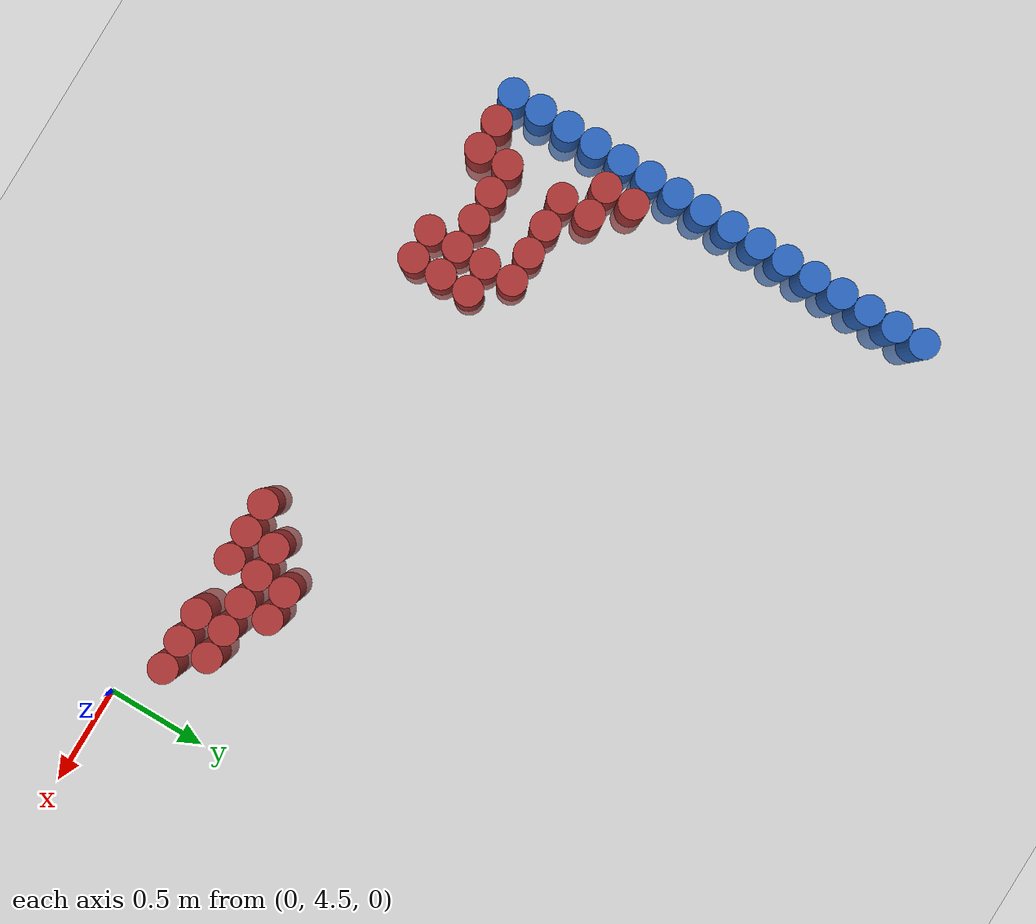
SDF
<sdf version="1.6">
 <world name="default">
  <model name="ground_plane">
   <static>1</static>
   <link name="link">
    <collision name="collision">
     <geometry><plane><normal>0 0 1</normal><size>100 100</size></plane></geometry>
     <surface><friction><ode><mu>100</mu><mu2>50</mu2></ode></friction></surface>
    </collision>
    <visual name="visual">
     <cast_shadows>0</cast_shadows>
     <geometry><plane><normal>0 0 1</normal><size>100 100</size></plane></geometry>
     <material>
      <script><uri>file://media/materials/scripts/gazebo.material</uri><name>Gazebo/Grey</name></script>
     </material>
    </visual>
   </link>
  </model>
  <model name="unit_cylinder_177">
   <static>1</static>
   <pose>-3.425000 4.675000 0.000000 0.000000 0.000000 0.000000</pose>
   <link name="link">
    <inertial>
     <mass>1</mass>
     <inertia><ixx>0.145833</ixx><ixy>0</ixy><ixz>0</ixz><iyy>0.145833</iyy><iyz>0</iyz><izz>0.125</izz></inertia>
    </inertial>
    <collision name="collision">
     <geometry><cylinder><radius>0.075000</radius><length>1.5</length></cylinder></geometry>
    </collision>
    <visual name="visual">
     <geometry><cylinder><radius>0.075000</radius><length>1.5</length></cylinder></geometry>
     <material>
      <ambient>0.152000 0.379000 0.720000 1</ambient>
      <diffuse>0.152000 0.379000 0.720000 1</diffuse>
     </material>
     <material>
      <script><name>Gazebo/Grey</name><uri>file://media/materials/scripts/gazebo.material</uri></script>
     </material>
    </visual>
   </link>
  </model>
  <model name="unit_cylinder_179">
   <static>1</static>
   <pose>-3.425000 4.825000 0.000000 0.000000 0.000000 0.000000</pose>
   <link name="link">
    <inertial>
     <mass>1</mass>
     <inertia><ixx>0.145833</ixx><ixy>0</ixy><ixz>0</ixz><iyy>0.145833</iyy><iyz>0</iyz><izz>0.125</izz></inertia>
    </inertial>
    <collision name="collision">
     <geometry><cylinder><radius>0.075000</radius><length>1.5</length></cylinder></geometry>
    </collision>
    <visual name="visual">
     <geometry><cylinder><radius>0.075000</radius><length>1.5</length></cylinder></geometry>
     <material>
      <ambient>0.152000 0.379000 0.720000 1</ambient>
      <diffuse>0.152000 0.379000 0.720000 1</diffuse>
     </material>
     <material>
      <script><name>Gazebo/Grey</name><uri>file://media/materials/scripts/gazebo.material</uri></script>
     </material>
    </visual>
   </link>
  </model>
  <model name="unit_cylinder_181">
   <static>1</static>
   <pose>-3.425000 4.975000 0.000000 0.000000 0.000000 0.000000</pose>
   <link name="link">
    <inertial>
     <mass>1</mass>
     <inertia><ixx>0.145833</ixx><ixy>0</ixy><ixz>0</ixz><iyy>0.145833</iyy><iyz>0</iyz><izz>0.125</izz></inertia>
    </inertial>
    <collision name="collision">
     <geometry><cylinder><radius>0.075000</radius><length>1.5</length></cylinder></geometry>
    </collision>
    <visual name="visual">
     <geometry><cylinder><radius>0.075000</radius><length>1.5</length></cylinder></geometry>
     <material>
      <ambient>0.152000 0.379000 0.720000 1</ambient>
      <diffuse>0.152000 0.379000 0.720000 1</diffuse>
     </material>
     <material>
      <script><name>Gazebo/Grey</name><uri>file://media/materials/scripts/gazebo.material</uri></script>
     </material>
    </visual>
   </link>
  </model>
  <model name="unit_cylinder_183">
   <static>1</static>
   <pose>-3.425000 5.125000 0.000000 0.000000 0.000000 0.000000</pose>
   <link name="link">
    <inertial>
     <mass>1</mass>
     <inertia><ixx>0.145833</ixx><ixy>0</ixy><ixz>0</ixz><iyy>0.145833</iyy><iyz>0</iyz><izz>0.125</izz></inertia>
    </inertial>
    <collision name="collision">
     <geometry><cylinder><radius>0.075000</radius><length>1.5</length></cylinder></geometry>
    </collision>
    <visual name="visual">
     <geometry><cylinder><radius>0.075000</radius><length>1.5</length></cylinder></geometry>
     <material>
      <ambient>0.152000 0.379000 0.720000 1</ambient>
      <diffuse>0.152000 0.379000 0.720000 1</diffuse>
     </material>
     <material>
      <script><name>Gazebo/Grey</name><uri>file://media/materials/scripts/gazebo.material</uri></script>
     </material>
    </visual>
   </link>
  </model>
  <model name="unit_cylinder_185">
   <static>1</static>
   <pose>-3.425000 5.275000 0.000000 0.000000 0.000000 0.000000</pose>
   <link name="link">
    <inertial>
     <mass>1</mass>
     <inertia><ixx>0.145833</ixx><ixy>0</ixy><ixz>0</ixz><iyy>0.145833</iyy><iyz>0</iyz><izz>0.125</izz></inertia>
    </inertial>
    <collision name="collision">
     <geometry><cylinder><radius>0.075000</radius><length>1.5</length></cylinder></geometry>
    </collision>
    <visual name="visual">
     <geometry><cylinder><radius>0.075000</radius><length>1.5</length></cylinder></geometry>
     <material>
      <ambient>0.152000 0.379000 0.720000 1</ambient>
      <diffuse>0.152000 0.379000 0.720000 1</diffuse>
     </material>
     <material>
      <script><name>Gazebo/Grey</name><uri>file://media/materials/scripts/gazebo.material</uri></script>
     </material>
    </visual>
   </link>
  </model>
  <model name="unit_cylinder_187">
   <static>1</static>
   <pose>-3.425000 5.425000 0.000000 0.000000 0.000000 0.000000</pose>
   <link name="link">
    <inertial>
     <mass>1</mass>
     <inertia><ixx>0.145833</ixx><ixy>0</ixy><ixz>0</ixz><iyy>0.145833</iyy><iyz>0</iyz><izz>0.125</izz></inertia>
    </inertial>
    <collision name="collision">
     <geometry><cylinder><radius>0.075000</radius><length>1.5</length></cylinder></geometry>
    </collision>
    <visual name="visual">
     <geometry><cylinder><radius>0.075000</radius><length>1.5</length></cylinder></geometry>
     <material>
      <ambient>0.152000 0.379000 0.720000 1</ambient>
      <diffuse>0.152000 0.379000 0.720000 1</diffuse>
     </material>
     <material>
      <script><name>Gazebo/Grey</name><uri>file://media/materials/scripts/gazebo.material</uri></script>
     </material>
    </visual>
   </link>
  </model>
  <model name="unit_cylinder_189">
   <static>1</static>
   <pose>-3.425000 5.575000 0.000000 0.000000 0.000000 0.000000</pose>
   <link name="link">
    <inertial>
     <mass>1</mass>
     <inertia><ixx>0.145833</ixx><ixy>0</ixy><ixz>0</ixz><iyy>0.145833</iyy><iyz>0</iyz><izz>0.125</izz></inertia>
    </inertial>
    <collision name="collision">
     <geometry><cylinder><radius>0.075000</radius><length>1.5</length></cylinder></geometry>
    </collision>
    <visual name="visual">
     <geometry><cylinder><radius>0.075000</radius><length>1.5</length></cylinder></geometry>
     <material>
      <ambient>0.152000 0.379000 0.720000 1</ambient>
      <diffuse>0.152000 0.379000 0.720000 1</diffuse>
     </material>
     <material>
      <script><name>Gazebo/Grey</name><uri>file://media/materials/scripts/gazebo.material</uri></script>
     </material>
    </visual>
   </link>
  </model>
  <model name="unit_cylinder_191">
   <static>1</static>
   <pose>-3.425000 5.725000 0.000000 0.000000 0.000000 0.000000</pose>
   <link name="link">
    <inertial>
     <mass>1</mass>
     <inertia><ixx>0.145833</ixx><ixy>0</ixy><ixz>0</ixz><iyy>0.145833</iyy><iyz>0</iyz><izz>0.125</izz></inertia>
    </inertial>
    <collision name="collision">
     <geometry><cylinder><radius>0.075000</radius><length>1.5</length></cylinder></geometry>
    </collision>
    <visual name="visual">
     <geometry><cylinder><radius>0.075000</radius><length>1.5</length></cylinder></geometry>
     <material>
      <ambient>0.152000 0.379000 0.720000 1</ambient>
      <diffuse>0.152000 0.379000 0.720000 1</diffuse>
     </material>
     <material>
      <script><name>Gazebo/Grey</name><uri>file://media/materials/scripts/gazebo.material</uri></script>
     </material>
    </visual>
   </link>
  </model>
  <model name="unit_cylinder_193">
   <static>1</static>
   <pose>-3.425000 5.875000 0.000000 0.000000 0.000000 0.000000</pose>
   <link name="link">
    <inertial>
     <mass>1</mass>
     <inertia><ixx>0.145833</ixx><ixy>0</ixy><ixz>0</ixz><iyy>0.145833</iyy><iyz>0</iyz><izz>0.125</izz></inertia>
    </inertial>
    <collision name="collision">
     <geometry><cylinder><radius>0.075000</radius><length>1.5</length></cylinder></geometry>
    </collision>
    <visual name="visual">
     <geometry><cylinder><radius>0.075000</radius><length>1.5</length></cylinder></geometry>
     <material>
      <ambient>0.152000 0.379000 0.720000 1</ambient>
      <diffuse>0.152000 0.379000 0.720000 1</diffuse>
     </material>
     <material>
      <script><name>Gazebo/Grey</name><uri>file://media/materials/scripts/gazebo.material</uri></script>
     </material>
    </visual>
   </link>
  </model>
  <model name="unit_cylinder_195">
   <static>1</static>
   <pose>-3.425000 6.025000 0.000000 0.000000 0.000000 0.000000</pose>
   <link name="link">
    <inertial>
     <mass>1</mass>
     <inertia><ixx>0.145833</ixx><ixy>0</ixy><ixz>0</ixz><iyy>0.145833</iyy><iyz>0</iyz><izz>0.125</izz></inertia>
    </inertial>
    <collision name="collision">
     <geometry><cylinder><radius>0.075000</radius><length>1.5</length></cylinder></geometry>
    </collision>
    <visual name="visual">
     <geometry><cylinder><radius>0.075000</radius><length>1.5</length></cylinder></geometry>
     <material>
      <ambient>0.152000 0.379000 0.720000 1</ambient>
      <diffuse>0.152000 0.379000 0.720000 1</diffuse>
     </material>
     <material>
      <script><name>Gazebo/Grey</name><uri>file://media/materials/scripts/gazebo.material</uri></script>
     </material>
    </visual>
   </link>
  </model>
  <model name="unit_cylinder_197">
   <static>1</static>
   <pose>-3.425000 6.175000 0.000000 0.000000 0.000000 0.000000</pose>
   <link name="link">
    <inertial>
     <mass>1</mass>
     <inertia><ixx>0.145833</ixx><ixy>0</ixy><ixz>0</ixz><iyy>0.145833</iyy><iyz>0</iyz><izz>0.125</izz></inertia>
    </inertial>
    <collision name="collision">
     <geometry><cylinder><radius>0.075000</radius><length>1.5</length></cylinder></geometry>
    </collision>
    <visual name="visual">
     <geometry><cylinder><radius>0.075000</radius><length>1.5</length></cylinder></geometry>
     <material>
      <ambient>0.152000 0.379000 0.720000 1</ambient>
      <diffuse>0.152000 0.379000 0.720000 1</diffuse>
     </material>
     <material>
      <script><name>Gazebo/Grey</name><uri>file://media/materials/scripts/gazebo.material</uri></script>
     </material>
    </visual>
   </link>
  </model>
  <model name="unit_cylinder_199">
   <static>1</static>
   <pose>-3.425000 6.325000 0.000000 0.000000 0.000000 0.000000</pose>
   <link name="link">
    <inertial>
     <mass>1</mass>
     <inertia><ixx>0.145833</ixx><ixy>0</ixy><ixz>0</ixz><iyy>0.145833</iyy><iyz>0</iyz><izz>0.125</izz></inertia>
    </inertial>
    <collision name="collision">
     <geometry><cylinder><radius>0.075000</radius><length>1.5</length></cylinder></geometry>
    </collision>
    <visual name="visual">
     <geometry><cylinder><radius>0.075000</radius><length>1.5</length></cylinder></geometry>
     <material>
      <ambient>0.152000 0.379000 0.720000 1</ambient>
      <diffuse>0.152000 0.379000 0.720000 1</diffuse>
     </material>
     <material>
      <script><name>Gazebo/Grey</name><uri>file://media/materials/scripts/gazebo.material</uri></script>
     </material>
    </visual>
   </link>
  </model>
  <model name="unit_cylinder_201">
   <static>1</static>
   <pose>-3.425000 6.475000 0.000000 0.000000 0.000000 0.000000</pose>
   <link name="link">
    <inertial>
     <mass>1</mass>
     <inertia><ixx>0.145833</ixx><ixy>0</ixy><ixz>0</ixz><iyy>0.145833</iyy><iyz>0</iyz><izz>0.125</izz></inertia>
    </inertial>
    <collision name="collision">
     <geometry><cylinder><radius>0.075000</radius><length>1.5</length></cylinder></geometry>
    </collision>
    <visual name="visual">
     <geometry><cylinder><radius>0.075000</radius><length>1.5</length></cylinder></geometry>
     <material>
      <ambient>0.152000 0.379000 0.720000 1</ambient>
      <diffuse>0.152000 0.379000 0.720000 1</diffuse>
     </material>
     <material>
      <script><name>Gazebo/Grey</name><uri>file://media/materials/scripts/gazebo.material</uri></script>
     </material>
    </visual>
   </link>
  </model>
  <model name="unit_cylinder_203">
   <static>1</static>
   <pose>-3.425000 6.625000 0.000000 0.000000 0.000000 0.000000</pose>
   <link name="link">
    <inertial>
     <mass>1</mass>
     <inertia><ixx>0.145833</ixx><ixy>0</ixy><ixz>0</ixz><iyy>0.145833</iyy><iyz>0</iyz><izz>0.125</izz></inertia>
    </inertial>
    <collision name="collision">
     <geometry><cylinder><radius>0.075000</radius><length>1.5</length></cylinder></geometry>
    </collision>
    <visual name="visual">
     <geometry><cylinder><radius>0.075000</radius><length>1.5</length></cylinder></geometry>
     <material>
      <ambient>0.152000 0.379000 0.720000 1</ambient>
      <diffuse>0.152000 0.379000 0.720000 1</diffuse>
     </material>
     <material>
      <script><name>Gazebo/Grey</name><uri>file://media/materials/scripts/gazebo.material</uri></script>
     </material>
    </visual>
   </link>
  </model>
  <model name="unit_cylinder_205">
   <static>1</static>
   <pose>-3.425000 6.775000 0.000000 0.000000 0.000000 0.000000</pose>
   <link name="link">
    <inertial>
     <mass>1</mass>
     <inertia><ixx>0.145833</ixx><ixy>0</ixy><ixz>0</ixz><iyy>0.145833</iyy><iyz>0</iyz><izz>0.125</izz></inertia>
    </inertial>
    <collision name="collision">
     <geometry><cylinder><radius>0.075000</radius><length>1.5</length></cylinder></geometry>
    </collision>
    <visual name="visual">
     <geometry><cylinder><radius>0.075000</radius><length>1.5</length></cylinder></geometry>
     <material>
      <ambient>0.152000 0.379000 0.720000 1</ambient>
      <diffuse>0.152000 0.379000 0.720000 1</diffuse>
     </material>
     <material>
      <script><name>Gazebo/Grey</name><uri>file://media/materials/scripts/gazebo.material</uri></script>
     </material>
    </visual>
   </link>
  </model>
  <model name="unit_cylinder_207">
   <static>1</static>
   <pose>-3.425000 6.925000 0.000000 0.000000 0.000000 0.000000</pose>
   <link name="link">
    <inertial>
     <mass>1</mass>
     <inertia><ixx>0.145833</ixx><ixy>0</ixy><ixz>0</ixz><iyy>0.145833</iyy><iyz>0</iyz><izz>0.125</izz></inertia>
    </inertial>
    <collision name="collision">
     <geometry><cylinder><radius>0.075000</radius><length>1.5</length></cylinder></geometry>
    </collision>
    <visual name="visual">
     <geometry><cylinder><radius>0.075000</radius><length>1.5</length></cylinder></geometry>
     <material>
      <ambient>0.152000 0.379000 0.720000 1</ambient>
      <diffuse>0.152000 0.379000 0.720000 1</diffuse>
     </material>
     <material>
      <script><name>Gazebo/Grey</name><uri>file://media/materials/scripts/gazebo.material</uri></script>
     </material>
    </visual>
   </link>
  </model>
  <model name="unit_cylinder_252">
   <static>1</static>
   <pose>-3.425000 4.675000 0.000000 0.000000 0.000000 0.000000</pose>
   <link name="link">
    <inertial>
     <mass>1</mass>
     <inertia><ixx>0.145833</ixx><ixy>0</ixy><ixz>0</ixz><iyy>0.145833</iyy><iyz>0</iyz><izz>0.125</izz></inertia>
    </inertial>
    <collision name="collision">
     <geometry><cylinder><radius>0.075000</radius><length>1.5</length></cylinder></geometry>
    </collision>
    <visual name="visual">
     <geometry><cylinder><radius>0.075000</radius><length>1.5</length></cylinder></geometry>
     <material>
      <ambient>0.152000 0.379000 0.720000 1</ambient>
      <diffuse>0.152000 0.379000 0.720000 1</diffuse>
     </material>
     <material>
      <script><name>Gazebo/Grey</name><uri>file://media/materials/scripts/gazebo.material</uri></script>
     </material>
    </visual>
   </link>
  </model>
  <model name="unit_cylinder_253">
   <static>1</static>
   <pose>-3.425000 4.825000 0.000000 0.000000 0.000000 0.000000</pose>
   <link name="link">
    <inertial>
     <mass>1</mass>
     <inertia><ixx>0.145833</ixx><ixy>0</ixy><ixz>0</ixz><iyy>0.145833</iyy><iyz>0</iyz><izz>0.125</izz></inertia>
    </inertial>
    <collision name="collision">
     <geometry><cylinder><radius>0.075000</radius><length>1.5</length></cylinder></geometry>
    </collision>
    <visual name="visual">
     <geometry><cylinder><radius>0.075000</radius><length>1.5</length></cylinder></geometry>
     <material>
      <ambient>0.152000 0.379000 0.720000 1</ambient>
      <diffuse>0.152000 0.379000 0.720000 1</diffuse>
     </material>
     <material>
      <script><name>Gazebo/Grey</name><uri>file://media/materials/scripts/gazebo.material</uri></script>
     </material>
    </visual>
   </link>
  </model>
  <model name="unit_cylinder_254">
   <static>1</static>
   <pose>-3.425000 4.975000 0.000000 0.000000 0.000000 0.000000</pose>
   <link name="link">
    <inertial>
     <mass>1</mass>
     <inertia><ixx>0.145833</ixx><ixy>0</ixy><ixz>0</ixz><iyy>0.145833</iyy><iyz>0</iyz><izz>0.125</izz></inertia>
    </inertial>
    <collision name="collision">
     <geometry><cylinder><radius>0.075000</radius><length>1.5</length></cylinder></geometry>
    </collision>
    <visual name="visual">
     <geometry><cylinder><radius>0.075000</radius><length>1.5</length></cylinder></geometry>
     <material>
      <ambient>0.152000 0.379000 0.720000 1</ambient>
      <diffuse>0.152000 0.379000 0.720000 1</diffuse>
     </material>
     <material>
      <script><name>Gazebo/Grey</name><uri>file://media/materials/scripts/gazebo.material</uri></script>
     </material>
    </visual>
   </link>
  </model>
  <model name="unit_cylinder_255">
   <static>1</static>
   <pose>-3.425000 5.125000 0.000000 0.000000 0.000000 0.000000</pose>
   <link name="link">
    <inertial>
     <mass>1</mass>
     <inertia><ixx>0.145833</ixx><ixy>0</ixy><ixz>0</ixz><iyy>0.145833</iyy><iyz>0</iyz><izz>0.125</izz></inertia>
    </inertial>
    <collision name="collision">
     <geometry><cylinder><radius>0.075000</radius><length>1.5</length></cylinder></geometry>
    </collision>
    <visual name="visual">
     <geometry><cylinder><radius>0.075000</radius><length>1.5</length></cylinder></geometry>
     <material>
      <ambient>0.152000 0.379000 0.720000 1</ambient>
      <diffuse>0.152000 0.379000 0.720000 1</diffuse>
     </material>
     <material>
      <script><name>Gazebo/Grey</name><uri>file://media/materials/scripts/gazebo.material</uri></script>
     </material>
    </visual>
   </link>
  </model>
  <model name="unit_cylinder_256">
   <static>1</static>
   <pose>-3.425000 5.275000 0.000000 0.000000 0.000000 0.000000</pose>
   <link name="link">
    <inertial>
     <mass>1</mass>
     <inertia><ixx>0.145833</ixx><ixy>0</ixy><ixz>0</ixz><iyy>0.145833</iyy><iyz>0</iyz><izz>0.125</izz></inertia>
    </inertial>
    <collision name="collision">
     <geometry><cylinder><radius>0.075000</radius><length>1.5</length></cylinder></geometry>
    </collision>
    <visual name="visual">
     <geometry><cylinder><radius>0.075000</radius><length>1.5</length></cylinder></geometry>
     <material>
      <ambient>0.152000 0.379000 0.720000 1</ambient>
      <diffuse>0.152000 0.379000 0.720000 1</diffuse>
     </material>
     <material>
      <script><name>Gazebo/Grey</name><uri>file://media/materials/scripts/gazebo.material</uri></script>
     </material>
    </visual>
   </link>
  </model>
  <model name="unit_cylinder_257">
   <static>1</static>
   <pose>-3.425000 5.425000 0.000000 0.000000 0.000000 0.000000</pose>
   <link name="link">
    <inertial>
     <mass>1</mass>
     <inertia><ixx>0.145833</ixx><ixy>0</ixy><ixz>0</ixz><iyy>0.145833</iyy><iyz>0</iyz><izz>0.125</izz></inertia>
    </inertial>
    <collision name="collision">
     <geometry><cylinder><radius>0.075000</radius><length>1.5</length></cylinder></geometry>
    </collision>
    <visual name="visual">
     <geometry><cylinder><radius>0.075000</radius><length>1.5</length></cylinder></geometry>
     <material>
      <ambient>0.152000 0.379000 0.720000 1</ambient>
      <diffuse>0.152000 0.379000 0.720000 1</diffuse>
     </material>
     <material>
      <script><name>Gazebo/Grey</name><uri>file://media/materials/scripts/gazebo.material</uri></script>
     </material>
    </visual>
   </link>
  </model>
  <model name="unit_cylinder_269">
   <static>1</static>
   <pose>-3.275000 4.675000 0.000000 0.000000 0.000000 0.000000</pose>
   <link name="link">
    <inertial>
     <mass>1</mass>
     <inertia><ixx>0.145833</ixx><ixy>0</ixy><ixz>0</ixz><iyy>0.145833</iyy><iyz>0</iyz><izz>0.125</izz></inertia>
    </inertial>
    <collision name="collision">
     <geometry><cylinder><radius>0.075000</radius><length>1.5</length></cylinder></geometry>
    </collision>
    <visual name="visual">
     <geometry><cylinder><radius>0.075000</radius><length>1.5</length></cylinder></geometry>
     <material>
      <ambient>0.648000 0.192000 0.192000 1</ambient>
      <diffuse>0.648000 0.192000 0.192000 1</diffuse>
     </material>
     <material>
      <script><name>Gazebo/Grey</name><uri>file://media/materials/scripts/gazebo.material</uri></script>
     </material>
    </visual>
   </link>
  </model>
  <model name="unit_cylinder_270">
   <static>1</static>
   <pose>-3.275000 5.275000 0.000000 0.000000 0.000000 0.000000</pose>
   <link name="link">
    <inertial>
     <mass>1</mass>
     <inertia><ixx>0.145833</ixx><ixy>0</ixy><ixz>0</ixz><iyy>0.145833</iyy><iyz>0</iyz><izz>0.125</izz></inertia>
    </inertial>
    <collision name="collision">
     <geometry><cylinder><radius>0.075000</radius><length>1.5</length></cylinder></geometry>
    </collision>
    <visual name="visual">
     <geometry><cylinder><radius>0.075000</radius><length>1.5</length></cylinder></geometry>
     <material>
      <ambient>0.648000 0.192000 0.192000 1</ambient>
      <diffuse>0.648000 0.192000 0.192000 1</diffuse>
     </material>
     <material>
      <script><name>Gazebo/Grey</name><uri>file://media/materials/scripts/gazebo.material</uri></script>
     </material>
    </visual>
   </link>
  </model>
  <model name="unit_cylinder_271">
   <static>1</static>
   <pose>-3.275000 5.425000 0.000000 0.000000 0.000000 0.000000</pose>
   <link name="link">
    <inertial>
     <mass>1</mass>
     <inertia><ixx>0.145833</ixx><ixy>0</ixy><ixz>0</ixz><iyy>0.145833</iyy><iyz>0</iyz><izz>0.125</izz></inertia>
    </inertial>
    <collision name="collision">
     <geometry><cylinder><radius>0.075000</radius><length>1.5</length></cylinder></geometry>
    </collision>
    <visual name="visual">
     <geometry><cylinder><radius>0.075000</radius><length>1.5</length></cylinder></geometry>
     <material>
      <ambient>0.648000 0.192000 0.192000 1</ambient>
      <diffuse>0.648000 0.192000 0.192000 1</diffuse>
     </material>
     <material>
      <script><name>Gazebo/Grey</name><uri>file://media/materials/scripts/gazebo.material</uri></script>
     </material>
    </visual>
   </link>
  </model>
  <model name="unit_cylinder_278">
   <static>1</static>
   <pose>-3.125000 4.675000 0.000000 0.000000 0.000000 0.000000</pose>
   <link name="link">
    <inertial>
     <mass>1</mass>
     <inertia><ixx>0.145833</ixx><ixy>0</ixy><ixz>0</ixz><iyy>0.145833</iyy><iyz>0</iyz><izz>0.125</izz></inertia>
    </inertial>
    <collision name="collision">
     <geometry><cylinder><radius>0.075000</radius><length>1.5</length></cylinder></geometry>
    </collision>
    <visual name="visual">
     <geometry><cylinder><radius>0.075000</radius><length>1.5</length></cylinder></geometry>
     <material>
      <ambient>0.648000 0.192000 0.192000 1</ambient>
      <diffuse>0.648000 0.192000 0.192000 1</diffuse>
     </material>
     <material>
      <script><name>Gazebo/Grey</name><uri>file://media/materials/scripts/gazebo.material</uri></script>
     </material>
    </visual>
   </link>
  </model>
  <model name="unit_cylinder_279">
   <static>1</static>
   <pose>-3.125000 4.825000 0.000000 0.000000 0.000000 0.000000</pose>
   <link name="link">
    <inertial>
     <mass>1</mass>
     <inertia><ixx>0.145833</ixx><ixy>0</ixy><ixz>0</ixz><iyy>0.145833</iyy><iyz>0</iyz><izz>0.125</izz></inertia>
    </inertial>
    <collision name="collision">
     <geometry><cylinder><radius>0.075000</radius><length>1.5</length></cylinder></geometry>
    </collision>
    <visual name="visual">
     <geometry><cylinder><radius>0.075000</radius><length>1.5</length></cylinder></geometry>
     <material>
      <ambient>0.648000 0.192000 0.192000 1</ambient>
      <diffuse>0.648000 0.192000 0.192000 1</diffuse>
     </material>
     <material>
      <script><name>Gazebo/Grey</name><uri>file://media/materials/scripts/gazebo.material</uri></script>
     </material>
    </visual>
   </link>
  </model>
  <model name="unit_cylinder_280">
   <static>1</static>
   <pose>-3.125000 5.125000 0.000000 0.000000 0.000000 0.000000</pose>
   <link name="link">
    <inertial>
     <mass>1</mass>
     <inertia><ixx>0.145833</ixx><ixy>0</ixy><ixz>0</ixz><iyy>0.145833</iyy><iyz>0</iyz><izz>0.125</izz></inertia>
    </inertial>
    <collision name="collision">
     <geometry><cylinder><radius>0.075000</radius><length>1.5</length></cylinder></geometry>
    </collision>
    <visual name="visual">
     <geometry><cylinder><radius>0.075000</radius><length>1.5</length></cylinder></geometry>
     <material>
      <ambient>0.648000 0.192000 0.192000 1</ambient>
      <diffuse>0.648000 0.192000 0.192000 1</diffuse>
     </material>
     <material>
      <script><name>Gazebo/Grey</name><uri>file://media/materials/scripts/gazebo.material</uri></script>
     </material>
    </visual>
   </link>
  </model>
  <model name="unit_cylinder_281">
   <static>1</static>
   <pose>-3.125000 5.275000 0.000000 0.000000 0.000000 0.000000</pose>
   <link name="link">
    <inertial>
     <mass>1</mass>
     <inertia><ixx>0.145833</ixx><ixy>0</ixy><ixz>0</ixz><iyy>0.145833</iyy><iyz>0</iyz><izz>0.125</izz></inertia>
    </inertial>
    <collision name="collision">
     <geometry><cylinder><radius>0.075000</radius><length>1.5</length></cylinder></geometry>
    </collision>
    <visual name="visual">
     <geometry><cylinder><radius>0.075000</radius><length>1.5</length></cylinder></geometry>
     <material>
      <ambient>0.648000 0.192000 0.192000 1</ambient>
      <diffuse>0.648000 0.192000 0.192000 1</diffuse>
     </material>
     <material>
      <script><name>Gazebo/Grey</name><uri>file://media/materials/scripts/gazebo.material</uri></script>
     </material>
    </visual>
   </link>
  </model>
  <model name="unit_cylinder_288">
   <static>1</static>
   <pose>-2.975000 4.825000 0.000000 0.000000 0.000000 0.000000</pose>
   <link name="link">
    <inertial>
     <mass>1</mass>
     <inertia><ixx>0.145833</ixx><ixy>0</ixy><ixz>0</ixz><iyy>0.145833</iyy><iyz>0</iyz><izz>0.125</izz></inertia>
    </inertial>
    <collision name="collision">
     <geometry><cylinder><radius>0.075000</radius><length>1.5</length></cylinder></geometry>
    </collision>
    <visual name="visual">
     <geometry><cylinder><radius>0.075000</radius><length>1.5</length></cylinder></geometry>
     <material>
      <ambient>0.648000 0.192000 0.192000 1</ambient>
      <diffuse>0.648000 0.192000 0.192000 1</diffuse>
     </material>
     <material>
      <script><name>Gazebo/Grey</name><uri>file://media/materials/scripts/gazebo.material</uri></script>
     </material>
    </visual>
   </link>
  </model>
  <model name="unit_cylinder_289">
   <static>1</static>
   <pose>-2.975000 5.125000 0.000000 0.000000 0.000000 0.000000</pose>
   <link name="link">
    <inertial>
     <mass>1</mass>
     <inertia><ixx>0.145833</ixx><ixy>0</ixy><ixz>0</ixz><iyy>0.145833</iyy><iyz>0</iyz><izz>0.125</izz></inertia>
    </inertial>
    <collision name="collision">
     <geometry><cylinder><radius>0.075000</radius><length>1.5</length></cylinder></geometry>
    </collision>
    <visual name="visual">
     <geometry><cylinder><radius>0.075000</radius><length>1.5</length></cylinder></geometry>
     <material>
      <ambient>0.648000 0.192000 0.192000 1</ambient>
      <diffuse>0.648000 0.192000 0.192000 1</diffuse>
     </material>
     <material>
      <script><name>Gazebo/Grey</name><uri>file://media/materials/scripts/gazebo.material</uri></script>
     </material>
    </visual>
   </link>
  </model>
  <model name="unit_cylinder_293">
   <static>1</static>
   <pose>-2.825000 4.825000 0.000000 0.000000 0.000000 0.000000</pose>
   <link name="link">
    <inertial>
     <mass>1</mass>
     <inertia><ixx>0.145833</ixx><ixy>0</ixy><ixz>0</ixz><iyy>0.145833</iyy><iyz>0</iyz><izz>0.125</izz></inertia>
    </inertial>
    <collision name="collision">
     <geometry><cylinder><radius>0.075000</radius><length>1.5</length></cylinder></geometry>
    </collision>
    <visual name="visual">
     <geometry><cylinder><radius>0.075000</radius><length>1.5</length></cylinder></geometry>
     <material>
      <ambient>0.648000 0.192000 0.192000 1</ambient>
      <diffuse>0.648000 0.192000 0.192000 1</diffuse>
     </material>
     <material>
      <script><name>Gazebo/Grey</name><uri>file://media/materials/scripts/gazebo.material</uri></script>
     </material>
    </visual>
   </link>
  </model>
  <model name="unit_cylinder_294">
   <static>1</static>
   <pose>-2.825000 5.125000 0.000000 0.000000 0.000000 0.000000</pose>
   <link name="link">
    <inertial>
     <mass>1</mass>
     <inertia><ixx>0.145833</ixx><ixy>0</ixy><ixz>0</ixz><iyy>0.145833</iyy><iyz>0</iyz><izz>0.125</izz></inertia>
    </inertial>
    <collision name="collision">
     <geometry><cylinder><radius>0.075000</radius><length>1.5</length></cylinder></geometry>
    </collision>
    <visual name="visual">
     <geometry><cylinder><radius>0.075000</radius><length>1.5</length></cylinder></geometry>
     <material>
      <ambient>0.648000 0.192000 0.192000 1</ambient>
      <diffuse>0.648000 0.192000 0.192000 1</diffuse>
     </material>
     <material>
      <script><name>Gazebo/Grey</name><uri>file://media/materials/scripts/gazebo.material</uri></script>
     </material>
    </visual>
   </link>
  </model>
  <model name="unit_cylinder_301">
   <static>1</static>
   <pose>-2.675000 4.675000 0.000000 0.000000 0.000000 0.000000</pose>
   <link name="link">
    <inertial>
     <mass>1</mass>
     <inertia><ixx>0.145833</ixx><ixy>0</ixy><ixz>0</ixz><iyy>0.145833</iyy><iyz>0</iyz><izz>0.125</izz></inertia>
    </inertial>
    <collision name="collision">
     <geometry><cylinder><radius>0.075000</radius><length>1.5</length></cylinder></geometry>
    </collision>
    <visual name="visual">
     <geometry><cylinder><radius>0.075000</radius><length>1.5</length></cylinder></geometry>
     <material>
      <ambient>0.648000 0.192000 0.192000 1</ambient>
      <diffuse>0.648000 0.192000 0.192000 1</diffuse>
     </material>
     <material>
      <script><name>Gazebo/Grey</name><uri>file://media/materials/scripts/gazebo.material</uri></script>
     </material>
    </visual>
   </link>
  </model>
  <model name="unit_cylinder_302">
   <static>1</static>
   <pose>-2.675000 4.825000 0.000000 0.000000 0.000000 0.000000</pose>
   <link name="link">
    <inertial>
     <mass>1</mass>
     <inertia><ixx>0.145833</ixx><ixy>0</ixy><ixz>0</ixz><iyy>0.145833</iyy><iyz>0</iyz><izz>0.125</izz></inertia>
    </inertial>
    <collision name="collision">
     <geometry><cylinder><radius>0.075000</radius><length>1.5</length></cylinder></geometry>
    </collision>
    <visual name="visual">
     <geometry><cylinder><radius>0.075000</radius><length>1.5</length></cylinder></geometry>
     <material>
      <ambient>0.648000 0.192000 0.192000 1</ambient>
      <diffuse>0.648000 0.192000 0.192000 1</diffuse>
     </material>
     <material>
      <script><name>Gazebo/Grey</name><uri>file://media/materials/scripts/gazebo.material</uri></script>
     </material>
    </visual>
   </link>
  </model>
  <model name="unit_cylinder_303">
   <static>1</static>
   <pose>-2.675000 4.975000 0.000000 0.000000 0.000000 0.000000</pose>
   <link name="link">
    <inertial>
     <mass>1</mass>
     <inertia><ixx>0.145833</ixx><ixy>0</ixy><ixz>0</ixz><iyy>0.145833</iyy><iyz>0</iyz><izz>0.125</izz></inertia>
    </inertial>
    <collision name="collision">
     <geometry><cylinder><radius>0.075000</radius><length>1.5</length></cylinder></geometry>
    </collision>
    <visual name="visual">
     <geometry><cylinder><radius>0.075000</radius><length>1.5</length></cylinder></geometry>
     <material>
      <ambient>0.648000 0.192000 0.192000 1</ambient>
      <diffuse>0.648000 0.192000 0.192000 1</diffuse>
     </material>
     <material>
      <script><name>Gazebo/Grey</name><uri>file://media/materials/scripts/gazebo.material</uri></script>
     </material>
    </visual>
   </link>
  </model>
  <model name="unit_cylinder_304">
   <static>1</static>
   <pose>-2.675000 5.125000 0.000000 0.000000 0.000000 0.000000</pose>
   <link name="link">
    <inertial>
     <mass>1</mass>
     <inertia><ixx>0.145833</ixx><ixy>0</ixy><ixz>0</ixz><iyy>0.145833</iyy><iyz>0</iyz><izz>0.125</izz></inertia>
    </inertial>
    <collision name="collision">
     <geometry><cylinder><radius>0.075000</radius><length>1.5</length></cylinder></geometry>
    </collision>
    <visual name="visual">
     <geometry><cylinder><radius>0.075000</radius><length>1.5</length></cylinder></geometry>
     <material>
      <ambient>0.648000 0.192000 0.192000 1</ambient>
      <diffuse>0.648000 0.192000 0.192000 1</diffuse>
     </material>
     <material>
      <script><name>Gazebo/Grey</name><uri>file://media/materials/scripts/gazebo.material</uri></script>
     </material>
    </visual>
   </link>
  </model>
  <model name="unit_cylinder_313">
   <static>1</static>
   <pose>-2.525000 4.675000 0.000000 0.000000 0.000000 0.000000</pose>
   <link name="link">
    <inertial>
     <mass>1</mass>
     <inertia><ixx>0.145833</ixx><ixy>0</ixy><ixz>0</ixz><iyy>0.145833</iyy><iyz>0</iyz><izz>0.125</izz></inertia>
    </inertial>
    <collision name="collision">
     <geometry><cylinder><radius>0.075000</radius><length>1.5</length></cylinder></geometry>
    </collision>
    <visual name="visual">
     <geometry><cylinder><radius>0.075000</radius><length>1.5</length></cylinder></geometry>
     <material>
      <ambient>0.648000 0.192000 0.192000 1</ambient>
      <diffuse>0.648000 0.192000 0.192000 1</diffuse>
     </material>
     <material>
      <script><name>Gazebo/Grey</name><uri>file://media/materials/scripts/gazebo.material</uri></script>
     </material>
    </visual>
   </link>
  </model>
  <model name="unit_cylinder_314">
   <static>1</static>
   <pose>-2.525000 4.825000 0.000000 0.000000 0.000000 0.000000</pose>
   <link name="link">
    <inertial>
     <mass>1</mass>
     <inertia><ixx>0.145833</ixx><ixy>0</ixy><ixz>0</ixz><iyy>0.145833</iyy><iyz>0</iyz><izz>0.125</izz></inertia>
    </inertial>
    <collision name="collision">
     <geometry><cylinder><radius>0.075000</radius><length>1.5</length></cylinder></geometry>
    </collision>
    <visual name="visual">
     <geometry><cylinder><radius>0.075000</radius><length>1.5</length></cylinder></geometry>
     <material>
      <ambient>0.648000 0.192000 0.192000 1</ambient>
      <diffuse>0.648000 0.192000 0.192000 1</diffuse>
     </material>
     <material>
      <script><name>Gazebo/Grey</name><uri>file://media/materials/scripts/gazebo.material</uri></script>
     </material>
    </visual>
   </link>
  </model>
  <model name="unit_cylinder_315">
   <static>1</static>
   <pose>-2.525000 4.975000 0.000000 0.000000 0.000000 0.000000</pose>
   <link name="link">
    <inertial>
     <mass>1</mass>
     <inertia><ixx>0.145833</ixx><ixy>0</ixy><ixz>0</ixz><iyy>0.145833</iyy><iyz>0</iyz><izz>0.125</izz></inertia>
    </inertial>
    <collision name="collision">
     <geometry><cylinder><radius>0.075000</radius><length>1.5</length></cylinder></geometry>
    </collision>
    <visual name="visual">
     <geometry><cylinder><radius>0.075000</radius><length>1.5</length></cylinder></geometry>
     <material>
      <ambient>0.648000 0.192000 0.192000 1</ambient>
      <diffuse>0.648000 0.192000 0.192000 1</diffuse>
     </material>
     <material>
      <script><name>Gazebo/Grey</name><uri>file://media/materials/scripts/gazebo.material</uri></script>
     </material>
    </visual>
   </link>
  </model>
  <model name="unit_cylinder_341">
   <static>1</static>
   <pose>-1.175000 4.675000 0.000000 0.000000 0.000000 0.000000</pose>
   <link name="link">
    <inertial>
     <mass>1</mass>
     <inertia><ixx>0.145833</ixx><ixy>0</ixy><ixz>0</ixz><iyy>0.145833</iyy><iyz>0</iyz><izz>0.125</izz></inertia>
    </inertial>
    <collision name="collision">
     <geometry><cylinder><radius>0.075000</radius><length>1.5</length></cylinder></geometry>
    </collision>
    <visual name="visual">
     <geometry><cylinder><radius>0.075000</radius><length>1.5</length></cylinder></geometry>
     <material>
      <ambient>0.648000 0.192000 0.192000 1</ambient>
      <diffuse>0.648000 0.192000 0.192000 1</diffuse>
     </material>
     <material>
      <script><name>Gazebo/Grey</name><uri>file://media/materials/scripts/gazebo.material</uri></script>
     </material>
    </visual>
   </link>
  </model>
  <model name="unit_cylinder_342">
   <static>1</static>
   <pose>-1.025000 4.675000 0.000000 0.000000 0.000000 0.000000</pose>
   <link name="link">
    <inertial>
     <mass>1</mass>
     <inertia><ixx>0.145833</ixx><ixy>0</ixy><ixz>0</ixz><iyy>0.145833</iyy><iyz>0</iyz><izz>0.125</izz></inertia>
    </inertial>
    <collision name="collision">
     <geometry><cylinder><radius>0.075000</radius><length>1.5</length></cylinder></geometry>
    </collision>
    <visual name="visual">
     <geometry><cylinder><radius>0.075000</radius><length>1.5</length></cylinder></geometry>
     <material>
      <ambient>0.648000 0.192000 0.192000 1</ambient>
      <diffuse>0.648000 0.192000 0.192000 1</diffuse>
     </material>
     <material>
      <script><name>Gazebo/Grey</name><uri>file://media/materials/scripts/gazebo.material</uri></script>
     </material>
    </visual>
   </link>
  </model>
  <model name="unit_cylinder_343">
   <static>1</static>
   <pose>-1.025000 4.825000 0.000000 0.000000 0.000000 0.000000</pose>
   <link name="link">
    <inertial>
     <mass>1</mass>
     <inertia><ixx>0.145833</ixx><ixy>0</ixy><ixz>0</ixz><iyy>0.145833</iyy><iyz>0</iyz><izz>0.125</izz></inertia>
    </inertial>
    <collision name="collision">
     <geometry><cylinder><radius>0.075000</radius><length>1.5</length></cylinder></geometry>
    </collision>
    <visual name="visual">
     <geometry><cylinder><radius>0.075000</radius><length>1.5</length></cylinder></geometry>
     <material>
      <ambient>0.648000 0.192000 0.192000 1</ambient>
      <diffuse>0.648000 0.192000 0.192000 1</diffuse>
     </material>
     <material>
      <script><name>Gazebo/Grey</name><uri>file://media/materials/scripts/gazebo.material</uri></script>
     </material>
    </visual>
   </link>
  </model>
  <model name="unit_cylinder_347">
   <static>1</static>
   <pose>-0.875000 4.675000 0.000000 0.000000 0.000000 0.000000</pose>
   <link name="link">
    <inertial>
     <mass>1</mass>
     <inertia><ixx>0.145833</ixx><ixy>0</ixy><ixz>0</ixz><iyy>0.145833</iyy><iyz>0</iyz><izz>0.125</izz></inertia>
    </inertial>
    <collision name="collision">
     <geometry><cylinder><radius>0.075000</radius><length>1.5</length></cylinder></geometry>
    </collision>
    <visual name="visual">
     <geometry><cylinder><radius>0.075000</radius><length>1.5</length></cylinder></geometry>
     <material>
      <ambient>0.648000 0.192000 0.192000 1</ambient>
      <diffuse>0.648000 0.192000 0.192000 1</diffuse>
     </material>
     <material>
      <script><name>Gazebo/Grey</name><uri>file://media/materials/scripts/gazebo.material</uri></script>
     </material>
    </visual>
   </link>
  </model>
  <model name="unit_cylinder_348">
   <static>1</static>
   <pose>-0.875000 4.825000 0.000000 0.000000 0.000000 0.000000</pose>
   <link name="link">
    <inertial>
     <mass>1</mass>
     <inertia><ixx>0.145833</ixx><ixy>0</ixy><ixz>0</ixz><iyy>0.145833</iyy><iyz>0</iyz><izz>0.125</izz></inertia>
    </inertial>
    <collision name="collision">
     <geometry><cylinder><radius>0.075000</radius><length>1.5</length></cylinder></geometry>
    </collision>
    <visual name="visual">
     <geometry><cylinder><radius>0.075000</radius><length>1.5</length></cylinder></geometry>
     <material>
      <ambient>0.648000 0.192000 0.192000 1</ambient>
      <diffuse>0.648000 0.192000 0.192000 1</diffuse>
     </material>
     <material>
      <script><name>Gazebo/Grey</name><uri>file://media/materials/scripts/gazebo.material</uri></script>
     </material>
    </visual>
   </link>
  </model>
  <model name="unit_cylinder_349">
   <static>1</static>
   <pose>-0.875000 4.975000 0.000000 0.000000 0.000000 0.000000</pose>
   <link name="link">
    <inertial>
     <mass>1</mass>
     <inertia><ixx>0.145833</ixx><ixy>0</ixy><ixz>0</ixz><iyy>0.145833</iyy><iyz>0</iyz><izz>0.125</izz></inertia>
    </inertial>
    <collision name="collision">
     <geometry><cylinder><radius>0.075000</radius><length>1.5</length></cylinder></geometry>
    </collision>
    <visual name="visual">
     <geometry><cylinder><radius>0.075000</radius><length>1.5</length></cylinder></geometry>
     <material>
      <ambient>0.648000 0.192000 0.192000 1</ambient>
      <diffuse>0.648000 0.192000 0.192000 1</diffuse>
     </material>
     <material>
      <script><name>Gazebo/Grey</name><uri>file://media/materials/scripts/gazebo.material</uri></script>
     </material>
    </visual>
   </link>
  </model>
  <model name="unit_cylinder_355">
   <static>1</static>
   <pose>-0.725000 4.825000 0.000000 0.000000 0.000000 0.000000</pose>
   <link name="link">
    <inertial>
     <mass>1</mass>
     <inertia><ixx>0.145833</ixx><ixy>0</ixy><ixz>0</ixz><iyy>0.145833</iyy><iyz>0</iyz><izz>0.125</izz></inertia>
    </inertial>
    <collision name="collision">
     <geometry><cylinder><radius>0.075000</radius><length>1.5</length></cylinder></geometry>
    </collision>
    <visual name="visual">
     <geometry><cylinder><radius>0.075000</radius><length>1.5</length></cylinder></geometry>
     <material>
      <ambient>0.648000 0.192000 0.192000 1</ambient>
      <diffuse>0.648000 0.192000 0.192000 1</diffuse>
     </material>
     <material>
      <script><name>Gazebo/Grey</name><uri>file://media/materials/scripts/gazebo.material</uri></script>
     </material>
    </visual>
   </link>
  </model>
  <model name="unit_cylinder_356">
   <static>1</static>
   <pose>-0.725000 4.975000 0.000000 0.000000 0.000000 0.000000</pose>
   <link name="link">
    <inertial>
     <mass>1</mass>
     <inertia><ixx>0.145833</ixx><ixy>0</ixy><ixz>0</ixz><iyy>0.145833</iyy><iyz>0</iyz><izz>0.125</izz></inertia>
    </inertial>
    <collision name="collision">
     <geometry><cylinder><radius>0.075000</radius><length>1.5</length></cylinder></geometry>
    </collision>
    <visual name="visual">
     <geometry><cylinder><radius>0.075000</radius><length>1.5</length></cylinder></geometry>
     <material>
      <ambient>0.648000 0.192000 0.192000 1</ambient>
      <diffuse>0.648000 0.192000 0.192000 1</diffuse>
     </material>
     <material>
      <script><name>Gazebo/Grey</name><uri>file://media/materials/scripts/gazebo.material</uri></script>
     </material>
    </visual>
   </link>
  </model>
  <model name="unit_cylinder_367">
   <static>1</static>
   <pose>-0.575000 4.675000 0.000000 0.000000 0.000000 0.000000</pose>
   <link name="link">
    <inertial>
     <mass>1</mass>
     <inertia><ixx>0.145833</ixx><ixy>0</ixy><ixz>0</ixz><iyy>0.145833</iyy><iyz>0</iyz><izz>0.125</izz></inertia>
    </inertial>
    <collision name="collision">
     <geometry><cylinder><radius>0.075000</radius><length>1.5</length></cylinder></geometry>
    </collision>
    <visual name="visual">
     <geometry><cylinder><radius>0.075000</radius><length>1.5</length></cylinder></geometry>
     <material>
      <ambient>0.648000 0.192000 0.192000 1</ambient>
      <diffuse>0.648000 0.192000 0.192000 1</diffuse>
     </material>
     <material>
      <script><name>Gazebo/Grey</name><uri>file://media/materials/scripts/gazebo.material</uri></script>
     </material>
    </visual>
   </link>
  </model>
  <model name="unit_cylinder_368">
   <static>1</static>
   <pose>-0.575000 4.825000 0.000000 0.000000 0.000000 0.000000</pose>
   <link name="link">
    <inertial>
     <mass>1</mass>
     <inertia><ixx>0.145833</ixx><ixy>0</ixy><ixz>0</ixz><iyy>0.145833</iyy><iyz>0</iyz><izz>0.125</izz></inertia>
    </inertial>
    <collision name="collision">
     <geometry><cylinder><radius>0.075000</radius><length>1.5</length></cylinder></geometry>
    </collision>
    <visual name="visual">
     <geometry><cylinder><radius>0.075000</radius><length>1.5</length></cylinder></geometry>
     <material>
      <ambient>0.648000 0.192000 0.192000 1</ambient>
      <diffuse>0.648000 0.192000 0.192000 1</diffuse>
     </material>
     <material>
      <script><name>Gazebo/Grey</name><uri>file://media/materials/scripts/gazebo.material</uri></script>
     </material>
    </visual>
   </link>
  </model>
  <model name="unit_cylinder_373">
   <static>1</static>
   <pose>-0.425000 4.675000 0.000000 0.000000 0.000000 0.000000</pose>
   <link name="link">
    <inertial>
     <mass>1</mass>
     <inertia><ixx>0.145833</ixx><ixy>0</ixy><ixz>0</ixz><iyy>0.145833</iyy><iyz>0</iyz><izz>0.125</izz></inertia>
    </inertial>
    <collision name="collision">
     <geometry><cylinder><radius>0.075000</radius><length>1.5</length></cylinder></geometry>
    </collision>
    <visual name="visual">
     <geometry><cylinder><radius>0.075000</radius><length>1.5</length></cylinder></geometry>
     <material>
      <ambient>0.648000 0.192000 0.192000 1</ambient>
      <diffuse>0.648000 0.192000 0.192000 1</diffuse>
     </material>
     <material>
      <script><name>Gazebo/Grey</name><uri>file://media/materials/scripts/gazebo.material</uri></script>
     </material>
    </visual>
   </link>
  </model>
  <model name="unit_cylinder_374">
   <static>1</static>
   <pose>-0.425000 4.825000 0.000000 0.000000 0.000000 0.000000</pose>
   <link name="link">
    <inertial>
     <mass>1</mass>
     <inertia><ixx>0.145833</ixx><ixy>0</ixy><ixz>0</ixz><iyy>0.145833</iyy><iyz>0</iyz><izz>0.125</izz></inertia>
    </inertial>
    <collision name="collision">
     <geometry><cylinder><radius>0.075000</radius><length>1.5</length></cylinder></geometry>
    </collision>
    <visual name="visual">
     <geometry><cylinder><radius>0.075000</radius><length>1.5</length></cylinder></geometry>
     <material>
      <ambient>0.648000 0.192000 0.192000 1</ambient>
      <diffuse>0.648000 0.192000 0.192000 1</diffuse>
     </material>
     <material>
      <script><name>Gazebo/Grey</name><uri>file://media/materials/scripts/gazebo.material</uri></script>
     </material>
    </visual>
   </link>
  </model>
  <model name="unit_cylinder_378">
   <static>1</static>
   <pose>-0.275000 4.675000 0.000000 0.000000 0.000000 0.000000</pose>
   <link name="link">
    <inertial>
     <mass>1</mass>
     <inertia><ixx>0.145833</ixx><ixy>0</ixy><ixz>0</ixz><iyy>0.145833</iyy><iyz>0</iyz><izz>0.125</izz></inertia>
    </inertial>
    <collision name="collision">
     <geometry><cylinder><radius>0.075000</radius><length>1.5</length></cylinder></geometry>
    </collision>
    <visual name="visual">
     <geometry><cylinder><radius>0.075000</radius><length>1.5</length></cylinder></geometry>
     <material>
      <ambient>0.648000 0.192000 0.192000 1</ambient>
      <diffuse>0.648000 0.192000 0.192000 1</diffuse>
     </material>
     <material>
      <script><name>Gazebo/Grey</name><uri>file://media/materials/scripts/gazebo.material</uri></script>
     </material>
    </visual>
   </link>
  </model>
 </world>
</sdf>
